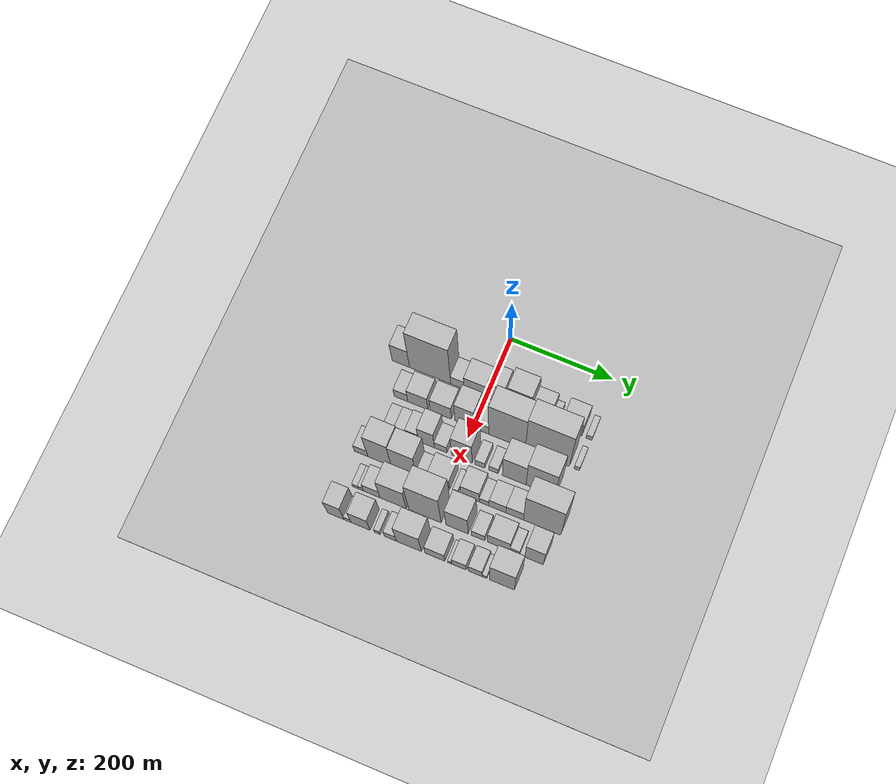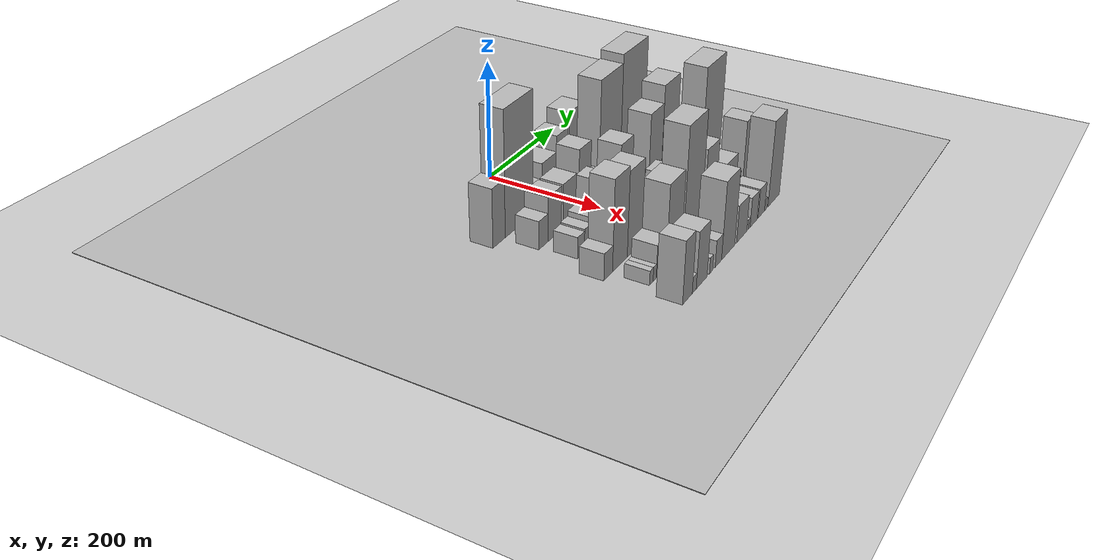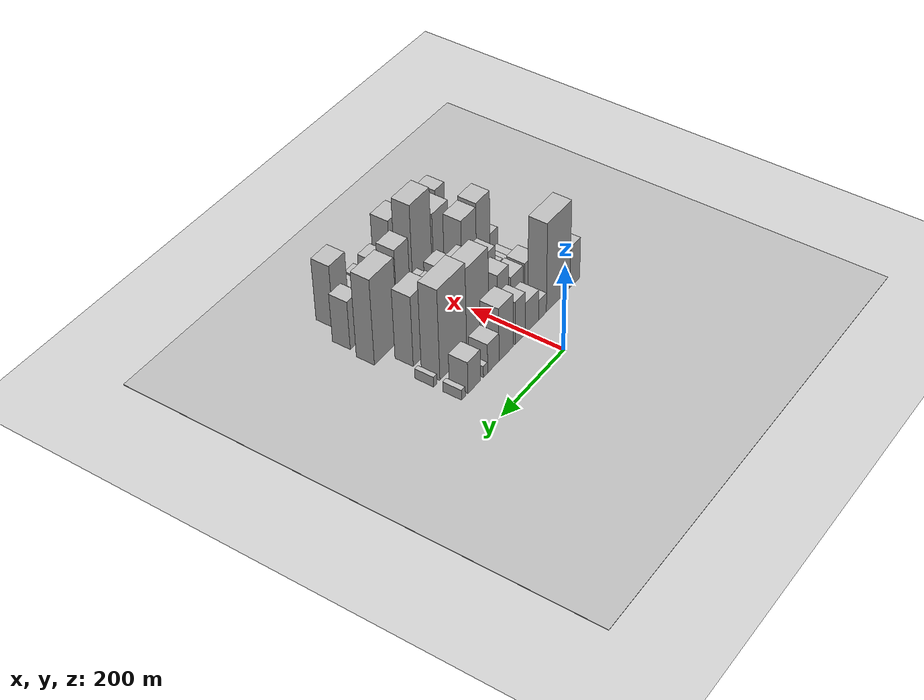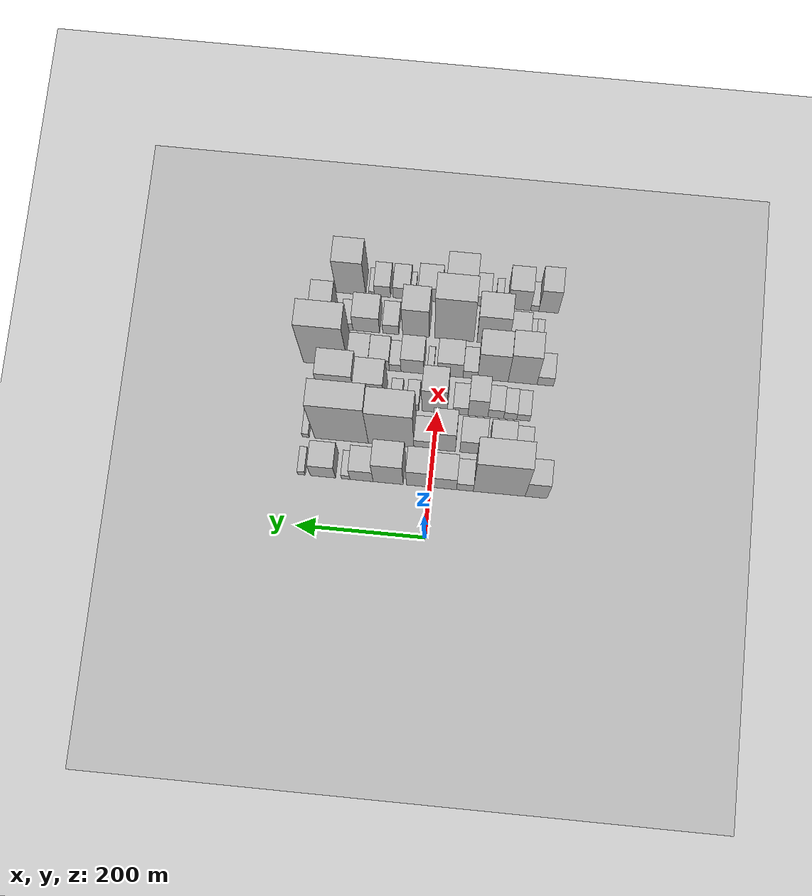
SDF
<sdf version="1.6">
 <world name="default">
  <include><name>ground_plane_1</name><uri>model://HANNAS_ground_plane</uri></include>
  <include>
   <name>ground_plane_2</name>
   <uri>model://HANNAS_ground_plane</uri>
   <pose>100 0 0  0 0 0</pose>
  </include>
  <model name="building_19">
   <static>1</static>
   <pose>100.0000 -165.2593 0 0.000000 0.000000 0.000000</pose>
   <link name="link">
    <pose>0 0 49.50 0 0 0</pose>
    <collision name="collision"><geometry><box><size>40.0000 34.0261 99.0000</size></box></geometry></collision>
    <visual name="visual">
     <cast_shadows>0</cast_shadows>
     <geometry><box><size>40.0000 34.0261 99.0000</size></box></geometry>
     <material>
      <script>
       <uri>model://HANNAS_wall/materials/scripts</uri>
       <uri>model://HANNAS_wall/materials/textures</uri>
       <name>vrc/HANNAS_wall</name>
      </script>
     </material>
    </visual>
   </link>
  </model>
  <model name="building_20">
   <static>1</static>
   <pose>100.0000 -107.9340 0 0.000000 0.000000 0.000000</pose>
   <link name="link">
    <pose>0 0 105.00 0 0 0</pose>
    <collision name="collision"><geometry><box><size>40.0000 80.6244 210.0000</size></box></geometry></collision>
    <visual name="visual">
     <cast_shadows>0</cast_shadows>
     <geometry><box><size>40.0000 80.6244 210.0000</size></box></geometry>
     <material>
      <script>
       <uri>model://HANNAS_wall/materials/scripts</uri>
       <uri>model://HANNAS_wall/materials/textures</uri>
       <name>vrc/HANNAS_wall</name>
      </script>
     </material>
    </visual>
   </link>
  </model>
  <model name="building_21">
   <static>1</static>
   <pose>100.0000 -54.6295 0 0.000000 0.000000 0.000000</pose>
   <link name="link">
    <pose>0 0 24.00 0 0 0</pose>
    <collision name="collision"><geometry><box><size>40.0000 25.9846 48.0000</size></box></geometry></collision>
    <visual name="visual">
     <cast_shadows>0</cast_shadows>
     <geometry><box><size>40.0000 25.9846 48.0000</size></box></geometry>
     <material>
      <script>
       <uri>model://HANNAS_wall/materials/scripts</uri>
       <uri>model://HANNAS_wall/materials/textures</uri>
       <name>vrc/HANNAS_wall</name>
      </script>
     </material>
    </visual>
   </link>
  </model>
  <model name="building_22">
   <static>1</static>
   <pose>100.0000 -19.1521 0 0.000000 0.000000 0.000000</pose>
   <link name="link">
    <pose>0 0 37.50 0 0 0</pose>
    <collision name="collision"><geometry><box><size>40.0000 44.9702 75.0000</size></box></geometry></collision>
    <visual name="visual">
     <cast_shadows>0</cast_shadows>
     <geometry><box><size>40.0000 44.9702 75.0000</size></box></geometry>
     <material>
      <script>
       <uri>model://HANNAS_wall/materials/scripts</uri>
       <uri>model://HANNAS_wall/materials/textures</uri>
       <name>vrc/HANNAS_wall</name>
      </script>
     </material>
    </visual>
   </link>
  </model>
  <model name="building_23">
   <static>1</static>
   <pose>100.0000 19.9262 0 0.000000 0.000000 0.000000</pose>
   <link name="link">
    <pose>0 0 51.00 0 0 0</pose>
    <collision name="collision"><geometry><box><size>40.0000 33.1864 102.0000</size></box></geometry></collision>
    <visual name="visual">
     <cast_shadows>0</cast_shadows>
     <geometry><box><size>40.0000 33.1864 102.0000</size></box></geometry>
     <material>
      <script>
       <uri>model://HANNAS_wall/materials/scripts</uri>
       <uri>model://HANNAS_wall/materials/textures</uri>
       <name>vrc/HANNAS_wall</name>
      </script>
     </material>
    </visual>
   </link>
  </model>
  <model name="building_24">
   <static>1</static>
   <pose>100.0000 64.9533 0 0.000000 0.000000 0.000000</pose>
   <link name="link">
    <pose>0 0 63.00 0 0 0</pose>
    <collision name="collision"><geometry><box><size>40.0000 46.8679 126.0000</size></box></geometry></collision>
    <visual name="visual">
     <cast_shadows>0</cast_shadows>
     <geometry><box><size>40.0000 46.8679 126.0000</size></box></geometry>
     <material>
      <script>
       <uri>model://HANNAS_wall/materials/scripts</uri>
       <uri>model://HANNAS_wall/materials/textures</uri>
       <name>vrc/HANNAS_wall</name>
      </script>
     </material>
    </visual>
   </link>
  </model>
  <model name="building_25">
   <static>1</static>
   <pose>100.0000 106.5144 0 0.000000 0.000000 0.000000</pose>
   <link name="link">
    <pose>0 0 34.50 0 0 0</pose>
    <collision name="collision"><geometry><box><size>40.0000 36.2544 69.0000</size></box></geometry></collision>
    <visual name="visual">
     <cast_shadows>0</cast_shadows>
     <geometry><box><size>40.0000 36.2544 69.0000</size></box></geometry>
     <material>
      <script>
       <uri>model://HANNAS_wall/materials/scripts</uri>
       <uri>model://HANNAS_wall/materials/textures</uri>
       <name>vrc/HANNAS_wall</name>
      </script>
     </material>
    </visual>
   </link>
  </model>
  <model name="building_26">
   <static>1</static>
   <pose>100.0000 131.3429 0 0.000000 0.000000 0.000000</pose>
   <link name="link">
    <pose>0 0 13.50 0 0 0</pose>
    <collision name="collision"><geometry><box><size>40.0000 13.4026 27.0000</size></box></geometry></collision>
    <visual name="visual">
     <cast_shadows>0</cast_shadows>
     <geometry><box><size>40.0000 13.4026 27.0000</size></box></geometry>
     <material>
      <script>
       <uri>model://HANNAS_wall/materials/scripts</uri>
       <uri>model://HANNAS_wall/materials/textures</uri>
       <name>vrc/HANNAS_wall</name>
      </script>
     </material>
    </visual>
   </link>
  </model>
  <model name="building_27">
   <static>1</static>
   <pose>100.0000 166.7465 0 0.000000 0.000000 0.000000</pose>
   <link name="link">
    <pose>0 0 37.50 0 0 0</pose>
    <collision name="collision"><geometry><box><size>40.0000 39.4046 75.0000</size></box></geometry></collision>
    <visual name="visual">
     <cast_shadows>0</cast_shadows>
     <geometry><box><size>40.0000 39.4046 75.0000</size></box></geometry>
     <material>
      <script>
       <uri>model://HANNAS_wall/materials/scripts</uri>
       <uri>model://HANNAS_wall/materials/textures</uri>
       <name>vrc/HANNAS_wall</name>
      </script>
     </material>
    </visual>
   </link>
  </model>
  <model name="building_28">
   <static>1</static>
   <pose>100.0000 200.1653 0 0.000000 0.000000 0.000000</pose>
   <link name="link">
    <pose>0 0 12.00 0 0 0</pose>
    <collision name="collision"><geometry><box><size>40.0000 11.4329 24.0000</size></box></geometry></collision>
    <visual name="visual">
     <cast_shadows>0</cast_shadows>
     <geometry><box><size>40.0000 11.4329 24.0000</size></box></geometry>
     <material>
      <script>
       <uri>model://HANNAS_wall/materials/scripts</uri>
       <uri>model://HANNAS_wall/materials/textures</uri>
       <name>vrc/HANNAS_wall</name>
      </script>
     </material>
    </visual>
   </link>
  </model>
  <model name="building_65">
   <static>1</static>
   <pose>160.0000 -138.9059 0 0.000000 0.000000 0.000000</pose>
   <link name="link">
    <pose>0 0 24.00 0 0 0</pose>
    <collision name="collision"><geometry><box><size>40.0000 26.5632 48.0000</size></box></geometry></collision>
    <visual name="visual">
     <cast_shadows>0</cast_shadows>
     <geometry><box><size>40.0000 26.5632 48.0000</size></box></geometry>
     <material>
      <script>
       <uri>model://HANNAS_wall/materials/scripts</uri>
       <uri>model://HANNAS_wall/materials/textures</uri>
       <name>vrc/HANNAS_wall</name>
      </script>
     </material>
    </visual>
   </link>
  </model>
  <model name="building_66">
   <static>1</static>
   <pose>160.0000 -106.1104 0 0.000000 0.000000 0.000000</pose>
   <link name="link">
    <pose>0 0 37.50 0 0 0</pose>
    <collision name="collision"><geometry><box><size>40.0000 39.0278 75.0000</size></box></geometry></collision>
    <visual name="visual">
     <cast_shadows>0</cast_shadows>
     <geometry><box><size>40.0000 39.0278 75.0000</size></box></geometry>
     <material>
      <script>
       <uri>model://HANNAS_wall/materials/scripts</uri>
       <uri>model://HANNAS_wall/materials/textures</uri>
       <name>vrc/HANNAS_wall</name>
      </script>
     </material>
    </visual>
   </link>
  </model>
  <model name="building_67">
   <static>1</static>
   <pose>160.0000 -61.2741 0 0.000000 0.000000 0.000000</pose>
   <link name="link">
    <pose>0 0 37.50 0 0 0</pose>
    <collision name="collision"><geometry><box><size>40.0000 40.6450 75.0000</size></box></geometry></collision>
    <visual name="visual">
     <cast_shadows>0</cast_shadows>
     <geometry><box><size>40.0000 40.6450 75.0000</size></box></geometry>
     <material>
      <script>
       <uri>model://HANNAS_wall/materials/scripts</uri>
       <uri>model://HANNAS_wall/materials/textures</uri>
       <name>vrc/HANNAS_wall</name>
      </script>
     </material>
    </visual>
   </link>
  </model>
  <model name="building_68">
   <static>1</static>
   <pose>160.0000 -15.4466 0 0.000000 0.000000 0.000000</pose>
   <link name="link">
    <pose>0 0 55.50 0 0 0</pose>
    <collision name="collision"><geometry><box><size>40.0000 37.0099 111.0000</size></box></geometry></collision>
    <visual name="visual">
     <cast_shadows>0</cast_shadows>
     <geometry><box><size>40.0000 37.0099 111.0000</size></box></geometry>
     <material>
      <script>
       <uri>model://HANNAS_wall/materials/scripts</uri>
       <uri>model://HANNAS_wall/materials/textures</uri>
       <name>vrc/HANNAS_wall</name>
      </script>
     </material>
    </visual>
   </link>
  </model>
  <model name="building_69">
   <static>1</static>
   <pose>160.0000 17.0440 0 0.000000 0.000000 0.000000</pose>
   <link name="link">
    <pose>0 0 25.50 0 0 0</pose>
    <collision name="collision"><geometry><box><size>40.0000 27.9713 51.0000</size></box></geometry></collision>
    <visual name="visual">
     <cast_shadows>0</cast_shadows>
     <geometry><box><size>40.0000 27.9713 51.0000</size></box></geometry>
     <material>
      <script>
       <uri>model://HANNAS_wall/materials/scripts</uri>
       <uri>model://HANNAS_wall/materials/textures</uri>
       <name>vrc/HANNAS_wall</name>
      </script>
     </material>
    </visual>
   </link>
  </model>
  <model name="building_70">
   <static>1</static>
   <pose>160.0000 66.5818 0 0.000000 0.000000 0.000000</pose>
   <link name="link">
    <pose>0 0 99.00 0 0 0</pose>
    <collision name="collision"><geometry><box><size>40.0000 71.1043 198.0000</size></box></geometry></collision>
    <visual name="visual">
     <cast_shadows>0</cast_shadows>
     <geometry><box><size>40.0000 71.1043 198.0000</size></box></geometry>
     <material>
      <script>
       <uri>model://HANNAS_wall/materials/scripts</uri>
       <uri>model://HANNAS_wall/materials/textures</uri>
       <name>vrc/HANNAS_wall</name>
      </script>
     </material>
    </visual>
   </link>
  </model>
  <model name="building_71">
   <static>1</static>
   <pose>160.0000 144.2404 0 0.000000 0.000000 0.000000</pose>
   <link name="link">
    <pose>0 0 106.50 0 0 0</pose>
    <collision name="collision"><geometry><box><size>40.0000 84.2129 213.0000</size></box></geometry></collision>
    <visual name="visual">
     <cast_shadows>0</cast_shadows>
     <geometry><box><size>40.0000 84.2129 213.0000</size></box></geometry>
     <material>
      <script>
       <uri>model://HANNAS_wall/materials/scripts</uri>
       <uri>model://HANNAS_wall/materials/textures</uri>
       <name>vrc/HANNAS_wall</name>
      </script>
     </material>
    </visual>
   </link>
  </model>
  <model name="building_72">
   <static>1</static>
   <pose>160.0000 200.5456 0 0.000000 0.000000 0.000000</pose>
   <link name="link">
    <pose>0 0 12.00 0 0 0</pose>
    <collision name="collision"><geometry><box><size>40.0000 10.3974 24.0000</size></box></geometry></collision>
    <visual name="visual">
     <cast_shadows>0</cast_shadows>
     <geometry><box><size>40.0000 10.3974 24.0000</size></box></geometry>
     <material>
      <script>
       <uri>model://HANNAS_wall/materials/scripts</uri>
       <uri>model://HANNAS_wall/materials/textures</uri>
       <name>vrc/HANNAS_wall</name>
      </script>
     </material>
    </visual>
   </link>
  </model>
  <model name="building_114">
   <static>1</static>
   <pose>220.0000 -134.9008 0 0.000000 0.000000 0.000000</pose>
   <link name="link">
    <pose>0 0 18.00 0 0 0</pose>
    <collision name="collision"><geometry><box><size>40.0000 20.6220 36.0000</size></box></geometry></collision>
    <visual name="visual">
     <cast_shadows>0</cast_shadows>
     <geometry><box><size>40.0000 20.6220 36.0000</size></box></geometry>
     <material>
      <script>
       <uri>model://HANNAS_wall/materials/scripts</uri>
       <uri>model://HANNAS_wall/materials/textures</uri>
       <name>vrc/HANNAS_wall</name>
      </script>
     </material>
    </visual>
   </link>
  </model>
  <model name="building_115">
   <static>1</static>
   <pose>220.0000 -114.3025 0 0.000000 0.000000 0.000000</pose>
   <link name="link">
    <pose>0 0 19.50 0 0 0</pose>
    <collision name="collision"><geometry><box><size>40.0000 20.5746 39.0000</size></box></geometry></collision>
    <visual name="visual">
     <cast_shadows>0</cast_shadows>
     <geometry><box><size>40.0000 20.5746 39.0000</size></box></geometry>
     <material>
      <script>
       <uri>model://HANNAS_wall/materials/scripts</uri>
       <uri>model://HANNAS_wall/materials/textures</uri>
       <name>vrc/HANNAS_wall</name>
      </script>
     </material>
    </visual>
   </link>
  </model>
  <model name="building_116">
   <static>1</static>
   <pose>220.0000 -91.6254 0 0.000000 0.000000 0.000000</pose>
   <link name="link">
    <pose>0 0 24.00 0 0 0</pose>
    <collision name="collision"><geometry><box><size>40.0000 24.7795 48.0000</size></box></geometry></collision>
    <visual name="visual">
     <cast_shadows>0</cast_shadows>
     <geometry><box><size>40.0000 24.7795 48.0000</size></box></geometry>
     <material>
      <script>
       <uri>model://HANNAS_wall/materials/scripts</uri>
       <uri>model://HANNAS_wall/materials/textures</uri>
       <name>vrc/HANNAS_wall</name>
      </script>
     </material>
    </visual>
   </link>
  </model>
  <model name="building_117">
   <static>1</static>
   <pose>220.0000 -63.7316 0 0.000000 0.000000 0.000000</pose>
   <link name="link">
    <pose>0 0 48.00 0 0 0</pose>
    <collision name="collision"><geometry><box><size>40.0000 31.0081 96.0000</size></box></geometry></collision>
    <visual name="visual">
     <cast_shadows>0</cast_shadows>
     <geometry><box><size>40.0000 31.0081 96.0000</size></box></geometry>
     <material>
      <script>
       <uri>model://HANNAS_wall/materials/scripts</uri>
       <uri>model://HANNAS_wall/materials/textures</uri>
       <name>vrc/HANNAS_wall</name>
      </script>
     </material>
    </visual>
   </link>
  </model>
  <model name="building_118">
   <static>1</static>
   <pose>220.0000 -36.2282 0 0.000000 0.000000 0.000000</pose>
   <link name="link">
    <pose>0 0 21.00 0 0 0</pose>
    <collision name="collision"><geometry><box><size>40.0000 23.9987 42.0000</size></box></geometry></collision>
    <visual name="visual">
     <cast_shadows>0</cast_shadows>
     <geometry><box><size>40.0000 23.9987 42.0000</size></box></geometry>
     <material>
      <script>
       <uri>model://HANNAS_wall/materials/scripts</uri>
       <uri>model://HANNAS_wall/materials/textures</uri>
       <name>vrc/HANNAS_wall</name>
      </script>
     </material>
    </visual>
   </link>
  </model>
  <model name="building_119">
   <static>1</static>
   <pose>220.0000 4.6042 0 0.000000 0.000000 0.000000</pose>
   <link name="link">
    <pose>0 0 63.00 0 0 0</pose>
    <collision name="collision"><geometry><box><size>40.0000 39.6660 126.0000</size></box></geometry></collision>
    <visual name="visual">
     <cast_shadows>0</cast_shadows>
     <geometry><box><size>40.0000 39.6660 126.0000</size></box></geometry>
     <material>
      <script>
       <uri>model://HANNAS_wall/materials/scripts</uri>
       <uri>model://HANNAS_wall/materials/textures</uri>
       <name>vrc/HANNAS_wall</name>
      </script>
     </material>
    </visual>
   </link>
  </model>
  <model name="building_120">
   <static>1</static>
   <pose>220.0000 38.9909 0 0.000000 0.000000 0.000000</pose>
   <link name="link">
    <pose>0 0 18.00 0 0 0</pose>
    <collision name="collision"><geometry><box><size>40.0000 19.1076 36.0000</size></box></geometry></collision>
    <visual name="visual">
     <cast_shadows>0</cast_shadows>
     <geometry><box><size>40.0000 19.1076 36.0000</size></box></geometry>
     <material>
      <script>
       <uri>model://HANNAS_wall/materials/scripts</uri>
       <uri>model://HANNAS_wall/materials/textures</uri>
       <name>vrc/HANNAS_wall</name>
      </script>
     </material>
    </visual>
   </link>
  </model>
  <model name="building_121">
   <static>1</static>
   <pose>220.0000 65.4959 0 0.000000 0.000000 0.000000</pose>
   <link name="link">
    <pose>0 0 16.50 0 0 0</pose>
    <collision name="collision"><geometry><box><size>40.0000 17.9024 33.0000</size></box></geometry></collision>
    <visual name="visual">
     <cast_shadows>0</cast_shadows>
     <geometry><box><size>40.0000 17.9024 33.0000</size></box></geometry>
     <material>
      <script>
       <uri>model://HANNAS_wall/materials/scripts</uri>
       <uri>model://HANNAS_wall/materials/textures</uri>
       <name>vrc/HANNAS_wall</name>
      </script>
     </material>
    </visual>
   </link>
  </model>
  <model name="building_122">
   <static>1</static>
   <pose>220.0000 105.1240 0 0.000000 0.000000 0.000000</pose>
   <link name="link">
    <pose>0 0 67.50 0 0 0</pose>
    <collision name="collision"><geometry><box><size>40.0000 45.3539 135.0000</size></box></geometry></collision>
    <visual name="visual">
     <cast_shadows>0</cast_shadows>
     <geometry><box><size>40.0000 45.3539 135.0000</size></box></geometry>
     <material>
      <script>
       <uri>model://HANNAS_wall/materials/scripts</uri>
       <uri>model://HANNAS_wall/materials/textures</uri>
       <name>vrc/HANNAS_wall</name>
      </script>
     </material>
    </visual>
   </link>
  </model>
  <model name="building_123">
   <static>1</static>
   <pose>220.0000 155.4152 0 0.000000 0.000000 0.000000</pose>
   <link name="link">
    <pose>0 0 82.50 0 0 0</pose>
    <collision name="collision"><geometry><box><size>40.0000 55.2284 165.0000</size></box></geometry></collision>
    <visual name="visual">
     <cast_shadows>0</cast_shadows>
     <geometry><box><size>40.0000 55.2284 165.0000</size></box></geometry>
     <material>
      <script>
       <uri>model://HANNAS_wall/materials/scripts</uri>
       <uri>model://HANNAS_wall/materials/textures</uri>
       <name>vrc/HANNAS_wall</name>
      </script>
     </material>
    </visual>
   </link>
  </model>
  <model name="building_171">
   <static>1</static>
   <pose>280.0000 -164.2531 0 0.000000 0.000000 0.000000</pose>
   <link name="link">
    <pose>0 0 22.50 0 0 0</pose>
    <collision name="collision"><geometry><box><size>40.0000 25.9515 45.0000</size></box></geometry></collision>
    <visual name="visual">
     <cast_shadows>0</cast_shadows>
     <geometry><box><size>40.0000 25.9515 45.0000</size></box></geometry>
     <material>
      <script>
       <uri>model://HANNAS_wall/materials/scripts</uri>
       <uri>model://HANNAS_wall/materials/textures</uri>
       <name>vrc/HANNAS_wall</name>
      </script>
     </material>
    </visual>
   </link>
  </model>
  <model name="building_172">
   <static>1</static>
   <pose>280.0000 -128.5716 0 0.000000 0.000000 0.000000</pose>
   <link name="link">
    <pose>0 0 75.00 0 0 0</pose>
    <collision name="collision"><geometry><box><size>40.0000 45.4113 150.0000</size></box></geometry></collision>
    <visual name="visual">
     <cast_shadows>0</cast_shadows>
     <geometry><box><size>40.0000 45.4113 150.0000</size></box></geometry>
     <material>
      <script>
       <uri>model://HANNAS_wall/materials/scripts</uri>
       <uri>model://HANNAS_wall/materials/textures</uri>
       <name>vrc/HANNAS_wall</name>
      </script>
     </material>
    </visual>
   </link>
  </model>
  <model name="building_173">
   <static>1</static>
   <pose>280.0000 -81.8156 0 0.000000 0.000000 0.000000</pose>
   <link name="link">
    <pose>0 0 70.50 0 0 0</pose>
    <collision name="collision"><geometry><box><size>40.0000 48.1006 141.0000</size></box></geometry></collision>
    <visual name="visual">
     <cast_shadows>0</cast_shadows>
     <geometry><box><size>40.0000 48.1006 141.0000</size></box></geometry>
     <material>
      <script>
       <uri>model://HANNAS_wall/materials/scripts</uri>
       <uri>model://HANNAS_wall/materials/textures</uri>
       <name>vrc/HANNAS_wall</name>
      </script>
     </material>
    </visual>
   </link>
  </model>
  <model name="building_174">
   <static>1</static>
   <pose>280.0000 -46.2225 0 0.000000 0.000000 0.000000</pose>
   <link name="link">
    <pose>0 0 19.50 0 0 0</pose>
    <collision name="collision"><geometry><box><size>40.0000 23.0857 39.0000</size></box></geometry></collision>
    <visual name="visual">
     <cast_shadows>0</cast_shadows>
     <geometry><box><size>40.0000 23.0857 39.0000</size></box></geometry>
     <material>
      <script>
       <uri>model://HANNAS_wall/materials/scripts</uri>
       <uri>model://HANNAS_wall/materials/textures</uri>
       <name>vrc/HANNAS_wall</name>
      </script>
     </material>
    </visual>
   </link>
  </model>
  <model name="building_175">
   <static>1</static>
   <pose>280.0000 -14.2083 0 0.000000 0.000000 0.000000</pose>
   <link name="link">
    <pose>0 0 36.00 0 0 0</pose>
    <collision name="collision"><geometry><box><size>40.0000 40.9428 72.0000</size></box></geometry></collision>
    <visual name="visual">
     <cast_shadows>0</cast_shadows>
     <geometry><box><size>40.0000 40.9428 72.0000</size></box></geometry>
     <material>
      <script>
       <uri>model://HANNAS_wall/materials/scripts</uri>
       <uri>model://HANNAS_wall/materials/textures</uri>
       <name>vrc/HANNAS_wall</name>
      </script>
     </material>
    </visual>
   </link>
  </model>
  <model name="building_176">
   <static>1</static>
   <pose>280.0000 17.2867 0 0.000000 0.000000 0.000000</pose>
   <link name="link">
    <pose>0 0 10.50 0 0 0</pose>
    <collision name="collision"><geometry><box><size>40.0000 10.0472 21.0000</size></box></geometry></collision>
    <visual name="visual">
     <cast_shadows>0</cast_shadows>
     <geometry><box><size>40.0000 10.0472 21.0000</size></box></geometry>
     <material>
      <script>
       <uri>model://HANNAS_wall/materials/scripts</uri>
       <uri>model://HANNAS_wall/materials/textures</uri>
       <name>vrc/HANNAS_wall</name>
      </script>
     </material>
    </visual>
   </link>
  </model>
  <model name="building_177">
   <static>1</static>
   <pose>280.0000 45.3409 0 0.000000 0.000000 0.000000</pose>
   <link name="link">
    <pose>0 0 36.00 0 0 0</pose>
    <collision name="collision"><geometry><box><size>40.0000 36.0612 72.0000</size></box></geometry></collision>
    <visual name="visual">
     <cast_shadows>0</cast_shadows>
     <geometry><box><size>40.0000 36.0612 72.0000</size></box></geometry>
     <material>
      <script>
       <uri>model://HANNAS_wall/materials/scripts</uri>
       <uri>model://HANNAS_wall/materials/textures</uri>
       <name>vrc/HANNAS_wall</name>
      </script>
     </material>
    </visual>
   </link>
  </model>
  <model name="building_178">
   <static>1</static>
   <pose>280.0000 72.6224 0 0.000000 0.000000 0.000000</pose>
   <link name="link">
    <pose>0 0 18.00 0 0 0</pose>
    <collision name="collision"><geometry><box><size>40.0000 18.5019 36.0000</size></box></geometry></collision>
    <visual name="visual">
     <cast_shadows>0</cast_shadows>
     <geometry><box><size>40.0000 18.5019 36.0000</size></box></geometry>
     <material>
      <script>
       <uri>model://HANNAS_wall/materials/scripts</uri>
       <uri>model://HANNAS_wall/materials/textures</uri>
       <name>vrc/HANNAS_wall</name>
      </script>
     </material>
    </visual>
   </link>
  </model>
  <model name="building_179">
   <static>1</static>
   <pose>280.0000 97.7902 0 0.000000 0.000000 0.000000</pose>
   <link name="link">
    <pose>0 0 27.00 0 0 0</pose>
    <collision name="collision"><geometry><box><size>40.0000 31.8336 54.0000</size></box></geometry></collision>
    <visual name="visual">
     <cast_shadows>0</cast_shadows>
     <geometry><box><size>40.0000 31.8336 54.0000</size></box></geometry>
     <material>
      <script>
       <uri>model://HANNAS_wall/materials/scripts</uri>
       <uri>model://HANNAS_wall/materials/textures</uri>
       <name>vrc/HANNAS_wall</name>
      </script>
     </material>
    </visual>
   </link>
  </model>
  <model name="building_180">
   <static>1</static>
   <pose>280.0000 130.2836 0 0.000000 0.000000 0.000000</pose>
   <link name="link">
    <pose>0 0 28.50 0 0 0</pose>
    <collision name="collision"><geometry><box><size>40.0000 33.1533 57.0000</size></box></geometry></collision>
    <visual name="visual">
     <cast_shadows>0</cast_shadows>
     <geometry><box><size>40.0000 33.1533 57.0000</size></box></geometry>
     <material>
      <script>
       <uri>model://HANNAS_wall/materials/scripts</uri>
       <uri>model://HANNAS_wall/materials/textures</uri>
       <name>vrc/HANNAS_wall</name>
      </script>
     </material>
    </visual>
   </link>
  </model>
  <model name="building_181">
   <static>1</static>
   <pose>280.0000 182.3405 0 0.000000 0.000000 0.000000</pose>
   <link name="link">
    <pose>0 0 100.50 0 0 0</pose>
    <collision name="collision"><geometry><box><size>40.0000 70.9606 201.0000</size></box></geometry></collision>
    <visual name="visual">
     <cast_shadows>0</cast_shadows>
     <geometry><box><size>40.0000 70.9606 201.0000</size></box></geometry>
     <material>
      <script>
       <uri>model://HANNAS_wall/materials/scripts</uri>
       <uri>model://HANNAS_wall/materials/textures</uri>
       <name>vrc/HANNAS_wall</name>
      </script>
     </material>
    </visual>
   </link>
  </model>
  <model name="building_226">
   <static>1</static>
   <pose>340.0000 -149.4476 0 0.000000 0.000000 0.000000</pose>
   <link name="link">
    <pose>0 0 12.00 0 0 0</pose>
    <collision name="collision"><geometry><box><size>40.0000 11.0915 24.0000</size></box></geometry></collision>
    <visual name="visual">
     <cast_shadows>0</cast_shadows>
     <geometry><box><size>40.0000 11.0915 24.0000</size></box></geometry>
     <material>
      <script>
       <uri>model://HANNAS_wall/materials/scripts</uri>
       <uri>model://HANNAS_wall/materials/textures</uri>
       <name>vrc/HANNAS_wall</name>
      </script>
     </material>
    </visual>
   </link>
  </model>
  <model name="building_227">
   <static>1</static>
   <pose>340.0000 -138.9338 0 0.000000 0.000000 0.000000</pose>
   <link name="link">
    <pose>0 0 12.00 0 0 0</pose>
    <collision name="collision"><geometry><box><size>40.0000 9.9361 24.0000</size></box></geometry></collision>
    <visual name="visual">
     <cast_shadows>0</cast_shadows>
     <geometry><box><size>40.0000 9.9361 24.0000</size></box></geometry>
     <material>
      <script>
       <uri>model://HANNAS_wall/materials/scripts</uri>
       <uri>model://HANNAS_wall/materials/textures</uri>
       <name>vrc/HANNAS_wall</name>
      </script>
     </material>
    </visual>
   </link>
  </model>
  <model name="building_228">
   <static>1</static>
   <pose>340.0000 -117.8420 0 0.000000 0.000000 0.000000</pose>
   <link name="link">
    <pose>0 0 27.00 0 0 0</pose>
    <collision name="collision"><geometry><box><size>40.0000 32.2474 54.0000</size></box></geometry></collision>
    <visual name="visual">
     <cast_shadows>0</cast_shadows>
     <geometry><box><size>40.0000 32.2474 54.0000</size></box></geometry>
     <material>
      <script>
       <uri>model://HANNAS_wall/materials/scripts</uri>
       <uri>model://HANNAS_wall/materials/textures</uri>
       <name>vrc/HANNAS_wall</name>
      </script>
     </material>
    </visual>
   </link>
  </model>
  <model name="building_229">
   <static>1</static>
   <pose>340.0000 -76.4442 0 0.000000 0.000000 0.000000</pose>
   <link name="link">
    <pose>0 0 67.50 0 0 0</pose>
    <collision name="collision"><geometry><box><size>40.0000 50.5482 135.0000</size></box></geometry></collision>
    <visual name="visual">
     <cast_shadows>0</cast_shadows>
     <geometry><box><size>40.0000 50.5482 135.0000</size></box></geometry>
     <material>
      <script>
       <uri>model://HANNAS_wall/materials/scripts</uri>
       <uri>model://HANNAS_wall/materials/textures</uri>
       <name>vrc/HANNAS_wall</name>
      </script>
     </material>
    </visual>
   </link>
  </model>
  <model name="building_230">
   <static>1</static>
   <pose>340.0000 -15.2872 0 0.000000 0.000000 0.000000</pose>
   <link name="link">
    <pose>0 0 100.50 0 0 0</pose>
    <collision name="collision"><geometry><box><size>40.0000 61.7658 201.0000</size></box></geometry></collision>
    <visual name="visual">
     <cast_shadows>0</cast_shadows>
     <geometry><box><size>40.0000 61.7658 201.0000</size></box></geometry>
     <material>
      <script>
       <uri>model://HANNAS_wall/materials/scripts</uri>
       <uri>model://HANNAS_wall/materials/textures</uri>
       <name>vrc/HANNAS_wall</name>
      </script>
     </material>
    </visual>
   </link>
  </model>
  <model name="building_231">
   <static>1</static>
   <pose>340.0000 45.7690 0 0.000000 0.000000 0.000000</pose>
   <link name="link">
    <pose>0 0 66.00 0 0 0</pose>
    <collision name="collision"><geometry><box><size>40.0000 42.3466 132.0000</size></box></geometry></collision>
    <visual name="visual">
     <cast_shadows>0</cast_shadows>
     <geometry><box><size>40.0000 42.3466 132.0000</size></box></geometry>
     <material>
      <script>
       <uri>model://HANNAS_wall/materials/scripts</uri>
       <uri>model://HANNAS_wall/materials/textures</uri>
       <name>vrc/HANNAS_wall</name>
      </script>
     </material>
    </visual>
   </link>
  </model>
  <model name="building_232">
   <static>1</static>
   <pose>340.0000 85.7353 0 0.000000 0.000000 0.000000</pose>
   <link name="link">
    <pose>0 0 22.50 0 0 0</pose>
    <collision name="collision"><geometry><box><size>40.0000 25.5860 45.0000</size></box></geometry></collision>
    <visual name="visual">
     <cast_shadows>0</cast_shadows>
     <geometry><box><size>40.0000 25.5860 45.0000</size></box></geometry>
     <material>
      <script>
       <uri>model://HANNAS_wall/materials/scripts</uri>
       <uri>model://HANNAS_wall/materials/textures</uri>
       <name>vrc/HANNAS_wall</name>
      </script>
     </material>
    </visual>
   </link>
  </model>
  <model name="building_233">
   <static>1</static>
   <pose>340.0000 124.8072 0 0.000000 0.000000 0.000000</pose>
   <link name="link">
    <pose>0 0 36.00 0 0 0</pose>
    <collision name="collision"><geometry><box><size>40.0000 42.5576 72.0000</size></box></geometry></collision>
    <visual name="visual">
     <cast_shadows>0</cast_shadows>
     <geometry><box><size>40.0000 42.5576 72.0000</size></box></geometry>
     <material>
      <script>
       <uri>model://HANNAS_wall/materials/scripts</uri>
       <uri>model://HANNAS_wall/materials/textures</uri>
       <name>vrc/HANNAS_wall</name>
      </script>
     </material>
    </visual>
   </link>
  </model>
  <model name="building_234">
   <static>1</static>
   <pose>340.0000 155.1279 0 0.000000 0.000000 0.000000</pose>
   <link name="link">
    <pose>0 0 16.50 0 0 0</pose>
    <collision name="collision"><geometry><box><size>40.0000 18.0838 33.0000</size></box></geometry></collision>
    <visual name="visual">
     <cast_shadows>0</cast_shadows>
     <geometry><box><size>40.0000 18.0838 33.0000</size></box></geometry>
     <material>
      <script>
       <uri>model://HANNAS_wall/materials/scripts</uri>
       <uri>model://HANNAS_wall/materials/textures</uri>
       <name>vrc/HANNAS_wall</name>
      </script>
     </material>
    </visual>
   </link>
  </model>
  <model name="building_235">
   <static>1</static>
   <pose>340.0000 191.5840 0 0.000000 0.000000 0.000000</pose>
   <link name="link">
    <pose>0 0 57.00 0 0 0</pose>
    <collision name="collision"><geometry><box><size>40.0000 34.8284 114.0000</size></box></geometry></collision>
    <visual name="visual">
     <cast_shadows>0</cast_shadows>
     <geometry><box><size>40.0000 34.8284 114.0000</size></box></geometry>
     <material>
      <script>
       <uri>model://HANNAS_wall/materials/scripts</uri>
       <uri>model://HANNAS_wall/materials/textures</uri>
       <name>vrc/HANNAS_wall</name>
      </script>
     </material>
    </visual>
   </link>
  </model>
  <model name="building_276">
   <static>1</static>
   <pose>400.0000 -159.7994 0 0.000000 0.000000 0.000000</pose>
   <link name="link">
    <pose>0 0 51.00 0 0 0</pose>
    <collision name="collision"><geometry><box><size>40.0000 31.2429 102.0000</size></box></geometry></collision>
    <visual name="visual">
     <cast_shadows>0</cast_shadows>
     <geometry><box><size>40.0000 31.2429 102.0000</size></box></geometry>
     <material>
      <script>
       <uri>model://HANNAS_wall/materials/scripts</uri>
       <uri>model://HANNAS_wall/materials/textures</uri>
       <name>vrc/HANNAS_wall</name>
      </script>
     </material>
    </visual>
   </link>
  </model>
  <model name="building_277">
   <static>1</static>
   <pose>400.0000 -137.6233 0 0.000000 0.000000 0.000000</pose>
   <link name="link">
    <pose>0 0 13.50 0 0 0</pose>
    <collision name="collision"><geometry><box><size>40.0000 13.1093 27.0000</size></box></geometry></collision>
    <visual name="visual">
     <cast_shadows>0</cast_shadows>
     <geometry><box><size>40.0000 13.1093 27.0000</size></box></geometry>
     <material>
      <script>
       <uri>model://HANNAS_wall/materials/scripts</uri>
       <uri>model://HANNAS_wall/materials/textures</uri>
       <name>vrc/HANNAS_wall</name>
      </script>
     </material>
    </visual>
   </link>
  </model>
  <model name="building_278">
   <static>1</static>
   <pose>400.0000 -112.8469 0 0.000000 0.000000 0.000000</pose>
   <link name="link">
    <pose>0 0 46.50 0 0 0</pose>
    <collision name="collision"><geometry><box><size>40.0000 36.4435 93.0000</size></box></geometry></collision>
    <visual name="visual">
     <cast_shadows>0</cast_shadows>
     <geometry><box><size>40.0000 36.4435 93.0000</size></box></geometry>
     <material>
      <script>
       <uri>model://HANNAS_wall/materials/scripts</uri>
       <uri>model://HANNAS_wall/materials/textures</uri>
       <name>vrc/HANNAS_wall</name>
      </script>
     </material>
    </visual>
   </link>
  </model>
  <model name="building_279">
   <static>1</static>
   <pose>400.0000 -80.9022 0 0.000000 0.000000 0.000000</pose>
   <link name="link">
    <pose>0 0 13.50 0 0 0</pose>
    <collision name="collision"><geometry><box><size>40.0000 11.4458 27.0000</size></box></geometry></collision>
    <visual name="visual">
     <cast_shadows>0</cast_shadows>
     <geometry><box><size>40.0000 11.4458 27.0000</size></box></geometry>
     <material>
      <script>
       <uri>model://HANNAS_wall/materials/scripts</uri>
       <uri>model://HANNAS_wall/materials/textures</uri>
       <name>vrc/HANNAS_wall</name>
      </script>
     </material>
    </visual>
   </link>
  </model>
  <model name="building_280">
   <static>1</static>
   <pose>400.0000 -55.7774 0 0.000000 0.000000 0.000000</pose>
   <link name="link">
    <pose>0 0 22.50 0 0 0</pose>
    <collision name="collision"><geometry><box><size>40.0000 22.8037 45.0000</size></box></geometry></collision>
    <visual name="visual">
     <cast_shadows>0</cast_shadows>
     <geometry><box><size>40.0000 22.8037 45.0000</size></box></geometry>
     <material>
      <script>
       <uri>model://HANNAS_wall/materials/scripts</uri>
       <uri>model://HANNAS_wall/materials/textures</uri>
       <name>vrc/HANNAS_wall</name>
      </script>
     </material>
    </visual>
   </link>
  </model>
  <model name="building_281">
   <static>1</static>
   <pose>400.0000 -20.6030 0 0.000000 0.000000 0.000000</pose>
   <link name="link">
    <pose>0 0 64.50 0 0 0</pose>
    <collision name="collision"><geometry><box><size>40.0000 47.5452 129.0000</size></box></geometry></collision>
    <visual name="visual">
     <cast_shadows>0</cast_shadows>
     <geometry><box><size>40.0000 47.5452 129.0000</size></box></geometry>
     <material>
      <script>
       <uri>model://HANNAS_wall/materials/scripts</uri>
       <uri>model://HANNAS_wall/materials/textures</uri>
       <name>vrc/HANNAS_wall</name>
      </script>
     </material>
    </visual>
   </link>
  </model>
  <model name="building_282">
   <static>1</static>
   <pose>400.0000 29.0135 0 0.000000 0.000000 0.000000</pose>
   <link name="link">
    <pose>0 0 31.50 0 0 0</pose>
    <collision name="collision"><geometry><box><size>40.0000 37.6878 63.0000</size></box></geometry></collision>
    <visual name="visual">
     <cast_shadows>0</cast_shadows>
     <geometry><box><size>40.0000 37.6878 63.0000</size></box></geometry>
     <material>
      <script>
       <uri>model://HANNAS_wall/materials/scripts</uri>
       <uri>model://HANNAS_wall/materials/textures</uri>
       <name>vrc/HANNAS_wall</name>
      </script>
     </material>
    </visual>
   </link>
  </model>
  <model name="building_283">
   <static>1</static>
   <pose>400.0000 56.9207 0 0.000000 0.000000 0.000000</pose>
   <link name="link">
    <pose>0 0 9.00 0 0 0</pose>
    <collision name="collision"><geometry><box><size>40.0000 8.1265 18.0000</size></box></geometry></collision>
    <visual name="visual">
     <cast_shadows>0</cast_shadows>
     <geometry><box><size>40.0000 8.1265 18.0000</size></box></geometry>
     <material>
      <script>
       <uri>model://HANNAS_wall/materials/scripts</uri>
       <uri>model://HANNAS_wall/materials/textures</uri>
       <name>vrc/HANNAS_wall</name>
      </script>
     </material>
    </visual>
   </link>
  </model>
  <model name="building_284">
   <static>1</static>
   <pose>400.0000 74.6657 0 0.000000 0.000000 0.000000</pose>
   <link name="link">
    <pose>0 0 25.50 0 0 0</pose>
    <collision name="collision"><geometry><box><size>40.0000 27.3636 51.0000</size></box></geometry></collision>
    <visual name="visual">
     <cast_shadows>0</cast_shadows>
     <geometry><box><size>40.0000 27.3636 51.0000</size></box></geometry>
     <material>
      <script>
       <uri>model://HANNAS_wall/materials/scripts</uri>
       <uri>model://HANNAS_wall/materials/textures</uri>
       <name>vrc/HANNAS_wall</name>
      </script>
     </material>
    </visual>
   </link>
  </model>
  <model name="building_285">
   <static>1</static>
   <pose>400.0000 105.2548 0 0.000000 0.000000 0.000000</pose>
   <link name="link">
    <pose>0 0 25.50 0 0 0</pose>
    <collision name="collision"><geometry><box><size>40.0000 25.8144 51.0000</size></box></geometry></collision>
    <visual name="visual">
     <cast_shadows>0</cast_shadows>
     <geometry><box><size>40.0000 25.8144 51.0000</size></box></geometry>
     <material>
      <script>
       <uri>model://HANNAS_wall/materials/scripts</uri>
       <uri>model://HANNAS_wall/materials/textures</uri>
       <name>vrc/HANNAS_wall</name>
      </script>
     </material>
    </visual>
   </link>
  </model>
  <model name="building_286">
   <static>1</static>
   <pose>400.0000 122.6512 0 0.000000 0.000000 0.000000</pose>
   <link name="link">
    <pose>0 0 10.50 0 0 0</pose>
    <collision name="collision"><geometry><box><size>40.0000 8.9785 21.0000</size></box></geometry></collision>
    <visual name="visual">
     <cast_shadows>0</cast_shadows>
     <geometry><box><size>40.0000 8.9785 21.0000</size></box></geometry>
     <material>
      <script>
       <uri>model://HANNAS_wall/materials/scripts</uri>
       <uri>model://HANNAS_wall/materials/textures</uri>
       <name>vrc/HANNAS_wall</name>
      </script>
     </material>
    </visual>
   </link>
  </model>
  <model name="building_287">
   <static>1</static>
   <pose>400.0000 155.6403 0 0.000000 0.000000 0.000000</pose>
   <link name="link">
    <pose>0 0 73.50 0 0 0</pose>
    <collision name="collision"><geometry><box><size>40.0000 46.9996 147.0000</size></box></geometry></collision>
    <visual name="visual">
     <cast_shadows>0</cast_shadows>
     <geometry><box><size>40.0000 46.9996 147.0000</size></box></geometry>
     <material>
      <script>
       <uri>model://HANNAS_wall/materials/scripts</uri>
       <uri>model://HANNAS_wall/materials/textures</uri>
       <name>vrc/HANNAS_wall</name>
      </script>
     </material>
    </visual>
   </link>
  </model>
 </world>
</sdf>
